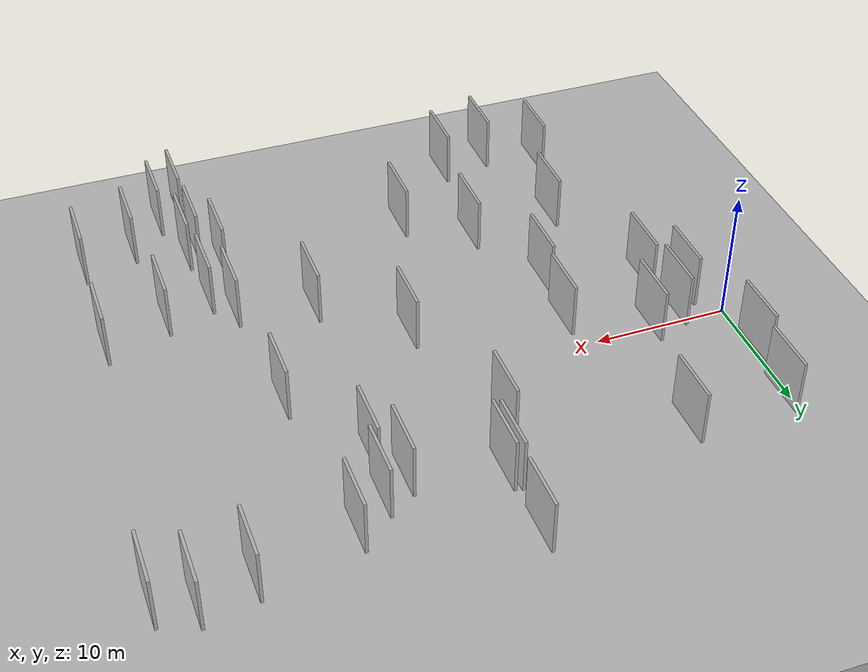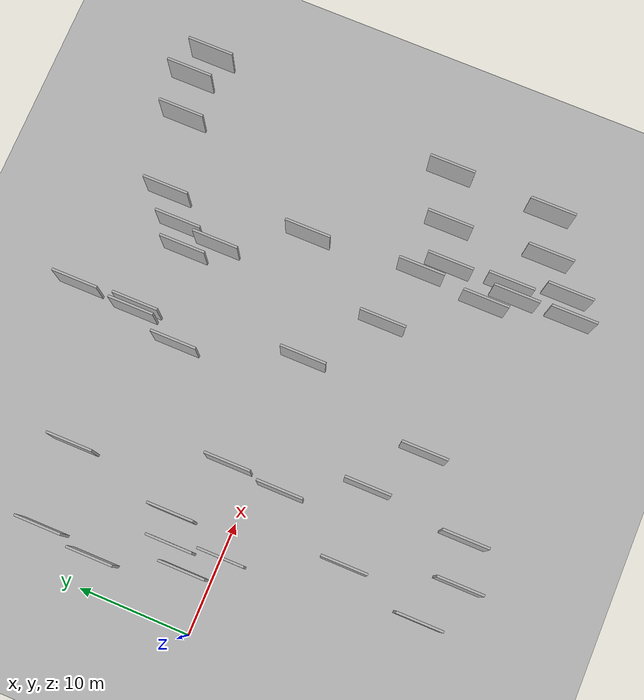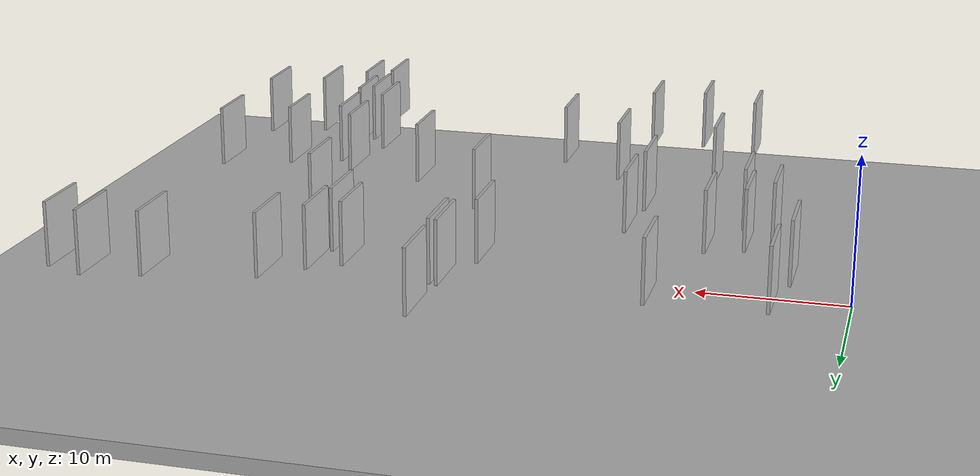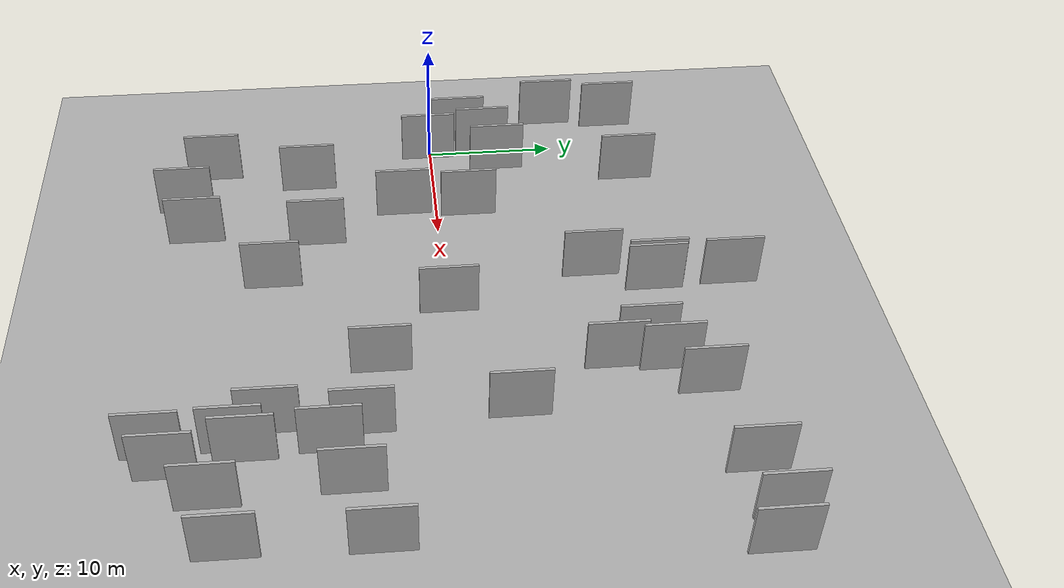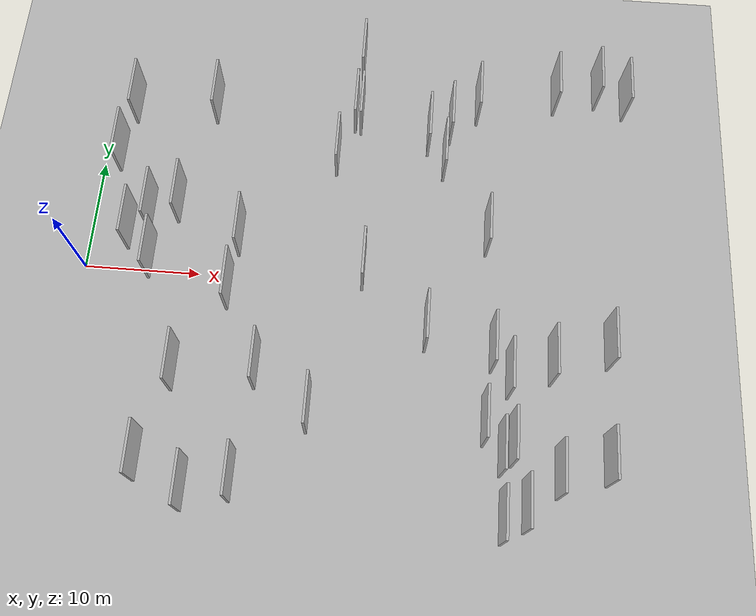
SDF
<?xml version="1.0" encoding="utf-8"?>

<sdf version="1.6">

   <world name="default">

      <gui fullscreen="0">

         <camera name="user_camera">

            <pose>-15 0 4.57585 0 0 0</pose>

            <view_controller>orbit</view_controller>

         </camera>

      </gui>

      <scene>

         <sky>

           <clouds>

             <speed>12</speed>

           </clouds>

         </sky>

         <ambient>0.4 0.4 0.4 1</ambient>

         <background>0.7 0.7 0.7 1</background>

         <shadows>1</shadows>

      </scene>

      <gravity>0 0 -9.8066</gravity>

      <magnetic_field>6e-06 2.3e-05 -4.2e-05</magnetic_field>

      <physics default="0" name="default_physics" type="ode">

         <ode>

            <solver>

               <type>quick</type>

               <iters>10</iters>

               <sor>1.0</sor>

               <use_dynamic_moi_rescaling>0</use_dynamic_moi_rescaling>

            </solver>

            <constraints>

               <cfm>0</cfm>

               <erp>0.2</erp>

               <contact_max_correcting_vel>100</contact_max_correcting_vel>

               <contact_surface_layer>0.001</contact_surface_layer>

            </constraints>

         </ode>

         <max_step_size>0.004</max_step_size>

         <real_time_factor>1</real_time_factor>

         <real_time_update_rate>250</real_time_update_rate>

      </physics>

      <light name="sun" type="directional">

         <cast_shadows>1</cast_shadows>

         <pose>0 0 10 0 0 0</pose>

         <diffuse>0.8 0.8 0.8 1</diffuse>

         <specular>0.2 0.2 0.2 1</specular>

         <attenuation>

            <range>1000</range>

            <constant>0.9</constant>

            <linear>0.01</linear>

            <quadratic>0.001</quadratic>

         </attenuation>

         <direction>-0.5 0.1 -0.9</direction>

      </light>

      <include>

         <name>ground_plane_1</name>

         <uri>model://HANNAS_ground_plane</uri>

         <pose>0 0 0  0 0 0</pose>

      </include>

      <include>

         <name>ground_plane_2</name>

         <uri>model://HANNAS_ground_plane</uri>

         <pose>100 0 0  0 0 0</pose>

      </include>

      <model name="HANNAS_wall_1">

         <static>1</static>

         <pose frame="">39.7737 17.2272 5.0 0.000000 0.000000 1.570796</pose>

         <link name="link">

            <pose frame="">0 0 2.00 0 0 0</pose>

            <collision name="collision">

               <geometry>

                  <box>

                     <size>4.00 0.2 4.00</size>

                  </box>

               </geometry>

               <max_contacts>10</max_contacts>

               <surface>

                  <contact>

                     <ode/>

                  </contact>

                  <bounce/>

                  <friction>

                     <torsional>

                        <ode/>

                     </torsional>

                     <ode/>

                  </friction>

               </surface>

            </collision>

            <visual name="visual">

               <cast_shadows>0</cast_shadows>

               <geometry>

                  <box>

                     <size>4.00 0.2 4.00</size>

                  </box>

               </geometry>

               <material>

                  <script>

                     <uri>model://HANNAS_wall/materials/scripts</uri>

                     <uri>model://HANNAS_wall/materials/textures</uri>

                     <name>vrc/HANNAS_wall</name>

                  </script>

               </material>

            </visual>

            <self_collide>0</self_collide>

            <enable_wind>0</enable_wind>

            <kinematic>0</kinematic>

         </link>

      </model>

      <model name="HANNAS_wall_2">

         <static>1</static>

         <pose frame="">36.5214 -13.6682 5.0 0.000000 0.000000 1.570796</pose>

         <link name="link">

            <pose frame="">0 0 2.00 0 0 0</pose>

            <collision name="collision">

               <geometry>

                  <box>

                     <size>4.00 0.2 4.00</size>

                  </box>

               </geometry>

               <max_contacts>10</max_contacts>

               <surface>

                  <contact>

                     <ode/>

                  </contact>

                  <bounce/>

                  <friction>

                     <torsional>

                        <ode/>

                     </torsional>

                     <ode/>

                  </friction>

               </surface>

            </collision>

            <visual name="visual">

               <cast_shadows>0</cast_shadows>

               <geometry>

                  <box>

                     <size>4.00 0.2 4.00</size>

                  </box>

               </geometry>

               <material>

                  <script>

                     <uri>model://HANNAS_wall/materials/scripts</uri>

                     <uri>model://HANNAS_wall/materials/textures</uri>

                     <name>vrc/HANNAS_wall</name>

                  </script>

               </material>

            </visual>

            <self_collide>0</self_collide>

            <enable_wind>0</enable_wind>

            <kinematic>0</kinematic>

         </link>

      </model>

      <model name="HANNAS_wall_3">

         <static>1</static>

         <pose frame="">34.3541 -12.2598 5.0 0.000000 0.000000 1.570796</pose>

         <link name="link">

            <pose frame="">0 0 2.00 0 0 0</pose>

            <collision name="collision">

               <geometry>

                  <box>

                     <size>4.00 0.2 4.00</size>

                  </box>

               </geometry>

               <max_contacts>10</max_contacts>

               <surface>

                  <contact>

                     <ode/>

                  </contact>

                  <bounce/>

                  <friction>

                     <torsional>

                        <ode/>

                     </torsional>

                     <ode/>

                  </friction>

               </surface>

            </collision>

            <visual name="visual">

               <cast_shadows>0</cast_shadows>

               <geometry>

                  <box>

                     <size>4.00 0.2 4.00</size>

                  </box>

               </geometry>

               <material>

                  <script>

                     <uri>model://HANNAS_wall/materials/scripts</uri>

                     <uri>model://HANNAS_wall/materials/textures</uri>

                     <name>vrc/HANNAS_wall</name>

                  </script>

               </material>

            </visual>

            <self_collide>0</self_collide>

            <enable_wind>0</enable_wind>

            <kinematic>0</kinematic>

         </link>

      </model>

      <model name="HANNAS_wall_4">

         <static>1</static>

         <pose frame="">22.7019 14.2163 5.0 0.000000 0.000000 1.570796</pose>

         <link name="link">

            <pose frame="">0 0 2.00 0 0 0</pose>

            <collision name="collision">

               <geometry>

                  <box>

                     <size>4.00 0.2 4.00</size>

                  </box>

               </geometry>

               <max_contacts>10</max_contacts>

               <surface>

                  <contact>

                     <ode/>

                  </contact>

                  <bounce/>

                  <friction>

                     <torsional>

                        <ode/>

                     </torsional>

                     <ode/>

                  </friction>

               </surface>

            </collision>

            <visual name="visual">

               <cast_shadows>0</cast_shadows>

               <geometry>

                  <box>

                     <size>4.00 0.2 4.00</size>

                  </box>

               </geometry>

               <material>

                  <script>

                     <uri>model://HANNAS_wall/materials/scripts</uri>

                     <uri>model://HANNAS_wall/materials/textures</uri>

                     <name>vrc/HANNAS_wall</name>

                  </script>

               </material>

            </visual>

            <self_collide>0</self_collide>

            <enable_wind>0</enable_wind>

            <kinematic>0</kinematic>

         </link>

      </model>

      <model name="HANNAS_wall_5">

         <static>1</static>

         <pose frame="">8.6656 4.5547 5.0 0.000000 0.000000 1.570796</pose>

         <link name="link">

            <pose frame="">0 0 2.00 0 0 0</pose>

            <collision name="collision">

               <geometry>

                  <box>

                     <size>4.00 0.2 4.00</size>

                  </box>

               </geometry>

               <max_contacts>10</max_contacts>

               <surface>

                  <contact>

                     <ode/>

                  </contact>

                  <bounce/>

                  <friction>

                     <torsional>

                        <ode/>

                     </torsional>

                     <ode/>

                  </friction>

               </surface>

            </collision>

            <visual name="visual">

               <cast_shadows>0</cast_shadows>

               <geometry>

                  <box>

                     <size>4.00 0.2 4.00</size>

                  </box>

               </geometry>

               <material>

                  <script>

                     <uri>model://HANNAS_wall/materials/scripts</uri>

                     <uri>model://HANNAS_wall/materials/textures</uri>

                     <name>vrc/HANNAS_wall</name>

                  </script>

               </material>

            </visual>

            <self_collide>0</self_collide>

            <enable_wind>0</enable_wind>

            <kinematic>0</kinematic>

         </link>

      </model>

      <model name="HANNAS_wall_6">

         <static>1</static>

         <pose frame="">30.4517 10.0811 5.0 0.000000 0.000000 1.570796</pose>

         <link name="link">

            <pose frame="">0 0 2.00 0 0 0</pose>

            <collision name="collision">

               <geometry>

                  <box>

                     <size>4.00 0.2 4.00</size>

                  </box>

               </geometry>

               <max_contacts>10</max_contacts>

               <surface>

                  <contact>

                     <ode/>

                  </contact>

                  <bounce/>

                  <friction>

                     <torsional>

                        <ode/>

                     </torsional>

                     <ode/>

                  </friction>

               </surface>

            </collision>

            <visual name="visual">

               <cast_shadows>0</cast_shadows>

               <geometry>

                  <box>

                     <size>4.00 0.2 4.00</size>

                  </box>

               </geometry>

               <material>

                  <script>

                     <uri>model://HANNAS_wall/materials/scripts</uri>

                     <uri>model://HANNAS_wall/materials/textures</uri>

                     <name>vrc/HANNAS_wall</name>

                  </script>

               </material>

            </visual>

            <self_collide>0</self_collide>

            <enable_wind>0</enable_wind>

            <kinematic>0</kinematic>

         </link>

      </model>

      <model name="HANNAS_wall_7">

         <static>1</static>

         <pose frame="">14.0369 1.9463 5.0 0.000000 0.000000 1.570796</pose>

         <link name="link">

            <pose frame="">0 0 2.00 0 0 0</pose>

            <collision name="collision">

               <geometry>

                  <box>

                     <size>4.00 0.2 4.00</size>

                  </box>

               </geometry>

               <max_contacts>10</max_contacts>

               <surface>

                  <contact>

                     <ode/>

                  </contact>

                  <bounce/>

                  <friction>

                     <torsional>

                        <ode/>

                     </torsional>

                     <ode/>

                  </friction>

               </surface>

            </collision>

            <visual name="visual">

               <cast_shadows>0</cast_shadows>

               <geometry>

                  <box>

                     <size>4.00 0.2 4.00</size>

                  </box>

               </geometry>

               <material>

                  <script>

                     <uri>model://HANNAS_wall/materials/scripts</uri>

                     <uri>model://HANNAS_wall/materials/textures</uri>

                     <name>vrc/HANNAS_wall</name>

                  </script>

               </material>

            </visual>

            <self_collide>0</self_collide>

            <enable_wind>0</enable_wind>

            <kinematic>0</kinematic>

         </link>

      </model>

      <model name="HANNAS_wall_8">

         <static>1</static>

         <pose frame="">43.3357 18.0027 5.0 0.000000 0.000000 1.570796</pose>

         <link name="link">

            <pose frame="">0 0 2.00 0 0 0</pose>

            <collision name="collision">

               <geometry>

                  <box>

                     <size>4.00 0.2 4.00</size>

                  </box>

               </geometry>

               <max_contacts>10</max_contacts>

               <surface>

                  <contact>

                     <ode/>

                  </contact>

                  <bounce/>

                  <friction>

                     <torsional>

                        <ode/>

                     </torsional>

                     <ode/>

                  </friction>

               </surface>

            </collision>

            <visual name="visual">

               <cast_shadows>0</cast_shadows>

               <geometry>

                  <box>

                     <size>4.00 0.2 4.00</size>

                  </box>

               </geometry>

               <material>

                  <script>

                     <uri>model://HANNAS_wall/materials/scripts</uri>

                     <uri>model://HANNAS_wall/materials/textures</uri>

                     <name>vrc/HANNAS_wall</name>

                  </script>

               </material>

            </visual>

            <self_collide>0</self_collide>

            <enable_wind>0</enable_wind>

            <kinematic>0</kinematic>

         </link>

      </model>

      <model name="HANNAS_wall_9">

         <static>1</static>

         <pose frame="">29.0372 12.4227 5.0 0.000000 0.000000 1.570796</pose>

         <link name="link">

            <pose frame="">0 0 2.00 0 0 0</pose>

            <collision name="collision">

               <geometry>

                  <box>

                     <size>4.00 0.2 4.00</size>

                  </box>

               </geometry>

               <max_contacts>10</max_contacts>

               <surface>

                  <contact>

                     <ode/>

                  </contact>

                  <bounce/>

                  <friction>

                     <torsional>

                        <ode/>

                     </torsional>

                     <ode/>

                  </friction>

               </surface>

            </collision>

            <visual name="visual">

               <cast_shadows>0</cast_shadows>

               <geometry>

                  <box>

                     <size>4.00 0.2 4.00</size>

                  </box>

               </geometry>

               <material>

                  <script>

                     <uri>model://HANNAS_wall/materials/scripts</uri>

                     <uri>model://HANNAS_wall/materials/textures</uri>

                     <name>vrc/HANNAS_wall</name>

                  </script>

               </material>

            </visual>

            <self_collide>0</self_collide>

            <enable_wind>0</enable_wind>

            <kinematic>0</kinematic>

         </link>

      </model>

      <model name="HANNAS_wall_10">

         <static>1</static>

         <pose frame="">16.5495 -9.1146 5.0 0.000000 0.000000 1.570796</pose>

         <link name="link">

            <pose frame="">0 0 2.00 0 0 0</pose>

            <collision name="collision">

               <geometry>

                  <box>

                     <size>4.00 0.2 4.00</size>

                  </box>

               </geometry>

               <max_contacts>10</max_contacts>

               <surface>

                  <contact>

                     <ode/>

                  </contact>

                  <bounce/>

                  <friction>

                     <torsional>

                        <ode/>

                     </torsional>

                     <ode/>

                  </friction>

               </surface>

            </collision>

            <visual name="visual">

               <cast_shadows>0</cast_shadows>

               <geometry>

                  <box>

                     <size>4.00 0.2 4.00</size>

                  </box>

               </geometry>

               <material>

                  <script>

                     <uri>model://HANNAS_wall/materials/scripts</uri>

                     <uri>model://HANNAS_wall/materials/textures</uri>

                     <name>vrc/HANNAS_wall</name>

                  </script>

               </material>

            </visual>

            <self_collide>0</self_collide>

            <enable_wind>0</enable_wind>

            <kinematic>0</kinematic>

         </link>

      </model>

      <model name="HANNAS_wall_11">

         <static>1</static>

         <pose frame="">21.4360 9.8905 5.0 0.000000 0.000000 1.570796</pose>

         <link name="link">

            <pose frame="">0 0 2.00 0 0 0</pose>

            <collision name="collision">

               <geometry>

                  <box>

                     <size>4.00 0.2 4.00</size>

                  </box>

               </geometry>

               <max_contacts>10</max_contacts>

               <surface>

                  <contact>

                     <ode/>

                  </contact>

                  <bounce/>

                  <friction>

                     <torsional>

                        <ode/>

                     </torsional>

                     <ode/>

                  </friction>

               </surface>

            </collision>

            <visual name="visual">

               <cast_shadows>0</cast_shadows>

               <geometry>

                  <box>

                     <size>4.00 0.2 4.00</size>

                  </box>

               </geometry>

               <material>

                  <script>

                     <uri>model://HANNAS_wall/materials/scripts</uri>

                     <uri>model://HANNAS_wall/materials/textures</uri>

                     <name>vrc/HANNAS_wall</name>

                  </script>

               </material>

            </visual>

            <self_collide>0</self_collide>

            <enable_wind>0</enable_wind>

            <kinematic>0</kinematic>

         </link>

      </model>

      <model name="HANNAS_wall_12">

         <static>1</static>

         <pose frame="">22.9943 19.3496 5.0 0.000000 0.000000 1.570796</pose>

         <link name="link">

            <pose frame="">0 0 2.00 0 0 0</pose>

            <collision name="collision">

               <geometry>

                  <box>

                     <size>4.00 0.2 4.00</size>

                  </box>

               </geometry>

               <max_contacts>10</max_contacts>

               <surface>

                  <contact>

                     <ode/>

                  </contact>

                  <bounce/>

                  <friction>

                     <torsional>

                        <ode/>

                     </torsional>

                     <ode/>

                  </friction>

               </surface>

            </collision>

            <visual name="visual">

               <cast_shadows>0</cast_shadows>

               <geometry>

                  <box>

                     <size>4.00 0.2 4.00</size>

                  </box>

               </geometry>

               <material>

                  <script>

                     <uri>model://HANNAS_wall/materials/scripts</uri>

                     <uri>model://HANNAS_wall/materials/textures</uri>

                     <name>vrc/HANNAS_wall</name>

                  </script>

               </material>

            </visual>

            <self_collide>0</self_collide>

            <enable_wind>0</enable_wind>

            <kinematic>0</kinematic>

         </link>

      </model>

      <model name="HANNAS_wall_13">

         <static>1</static>

         <pose frame="">39.4922 -7.1255 5.0 0.000000 0.000000 1.570796</pose>

         <link name="link">

            <pose frame="">0 0 2.00 0 0 0</pose>

            <collision name="collision">

               <geometry>

                  <box>

                     <size>4.00 0.2 4.00</size>

                  </box>

               </geometry>

               <max_contacts>10</max_contacts>

               <surface>

                  <contact>

                     <ode/>

                  </contact>

                  <bounce/>

                  <friction>

                     <torsional>

                        <ode/>

                     </torsional>

                     <ode/>

                  </friction>

               </surface>

            </collision>

            <visual name="visual">

               <cast_shadows>0</cast_shadows>

               <geometry>

                  <box>

                     <size>4.00 0.2 4.00</size>

                  </box>

               </geometry>

               <material>

                  <script>

                     <uri>model://HANNAS_wall/materials/scripts</uri>

                     <uri>model://HANNAS_wall/materials/textures</uri>

                     <name>vrc/HANNAS_wall</name>

                  </script>

               </material>

            </visual>

            <self_collide>0</self_collide>

            <enable_wind>0</enable_wind>

            <kinematic>0</kinematic>

         </link>

      </model>

      <model name="HANNAS_wall_14">

         <static>1</static>

         <pose frame="">10.6797 14.2090 5.0 0.000000 0.000000 1.570796</pose>

         <link name="link">

            <pose frame="">0 0 2.00 0 0 0</pose>

            <collision name="collision">

               <geometry>

                  <box>

                     <size>4.00 0.2 4.00</size>

                  </box>

               </geometry>

               <max_contacts>10</max_contacts>

               <surface>

                  <contact>

                     <ode/>

                  </contact>

                  <bounce/>

                  <friction>

                     <torsional>

                        <ode/>

                     </torsional>

                     <ode/>

                  </friction>

               </surface>

            </collision>

            <visual name="visual">

               <cast_shadows>0</cast_shadows>

               <geometry>

                  <box>

                     <size>4.00 0.2 4.00</size>

                  </box>

               </geometry>

               <material>

                  <script>

                     <uri>model://HANNAS_wall/materials/scripts</uri>

                     <uri>model://HANNAS_wall/materials/textures</uri>

                     <name>vrc/HANNAS_wall</name>

                  </script>

               </material>

            </visual>

            <self_collide>0</self_collide>

            <enable_wind>0</enable_wind>

            <kinematic>0</kinematic>

         </link>

      </model>

      <model name="HANNAS_wall_15">

         <static>1</static>

         <pose frame="">39.9964 -15.7998 5.0 0.000000 0.000000 1.570796</pose>

         <link name="link">

            <pose frame="">0 0 2.00 0 0 0</pose>

            <collision name="collision">

               <geometry>

                  <box>

                     <size>4.00 0.2 4.00</size>

                  </box>

               </geometry>

               <max_contacts>10</max_contacts>

               <surface>

                  <contact>

                     <ode/>

                  </contact>

                  <bounce/>

                  <friction>

                     <torsional>

                        <ode/>

                     </torsional>

                     <ode/>

                  </friction>

               </surface>

            </collision>

            <visual name="visual">

               <cast_shadows>0</cast_shadows>

               <geometry>

                  <box>

                     <size>4.00 0.2 4.00</size>

                  </box>

               </geometry>

               <material>

                  <script>

                     <uri>model://HANNAS_wall/materials/scripts</uri>

                     <uri>model://HANNAS_wall/materials/textures</uri>

                     <name>vrc/HANNAS_wall</name>

                  </script>

               </material>

            </visual>

            <self_collide>0</self_collide>

            <enable_wind>0</enable_wind>

            <kinematic>0</kinematic>

         </link>

      </model>

      <model name="HANNAS_wall_16">

         <static>1</static>

         <pose frame="">35.7026 -14.4355 5.0 0.000000 0.000000 1.570796</pose>

         <link name="link">

            <pose frame="">0 0 2.00 0 0 0</pose>

            <collision name="collision">

               <geometry>

                  <box>

                     <size>4.00 0.2 4.00</size>

                  </box>

               </geometry>

               <max_contacts>10</max_contacts>

               <surface>

                  <contact>

                     <ode/>

                  </contact>

                  <bounce/>

                  <friction>

                     <torsional>

                        <ode/>

                     </torsional>

                     <ode/>

                  </friction>

               </surface>

            </collision>

            <visual name="visual">

               <cast_shadows>0</cast_shadows>

               <geometry>

                  <box>

                     <size>4.00 0.2 4.00</size>

                  </box>

               </geometry>

               <material>

                  <script>

                     <uri>model://HANNAS_wall/materials/scripts</uri>

                     <uri>model://HANNAS_wall/materials/textures</uri>

                     <name>vrc/HANNAS_wall</name>

                  </script>

               </material>

            </visual>

            <self_collide>0</self_collide>

            <enable_wind>0</enable_wind>

            <kinematic>0</kinematic>

         </link>

      </model>

      <model name="HANNAS_wall_17">

         <static>1</static>

         <pose frame="">12.1070 -18.7180 5.0 0.000000 0.000000 1.570796</pose>

         <link name="link">

            <pose frame="">0 0 2.00 0 0 0</pose>

            <collision name="collision">

               <geometry>

                  <box>

                     <size>4.00 0.2 4.00</size>

                  </box>

               </geometry>

               <max_contacts>10</max_contacts>

               <surface>

                  <contact>

                     <ode/>

                  </contact>

                  <bounce/>

                  <friction>

                     <torsional>

                        <ode/>

                     </torsional>

                     <ode/>

                  </friction>

               </surface>

            </collision>

            <visual name="visual">

               <cast_shadows>0</cast_shadows>

               <geometry>

                  <box>

                     <size>4.00 0.2 4.00</size>

                  </box>

               </geometry>

               <material>

                  <script>

                     <uri>model://HANNAS_wall/materials/scripts</uri>

                     <uri>model://HANNAS_wall/materials/textures</uri>

                     <name>vrc/HANNAS_wall</name>

                  </script>

               </material>

            </visual>

            <self_collide>0</self_collide>

            <enable_wind>0</enable_wind>

            <kinematic>0</kinematic>

         </link>

      </model>

      <model name="HANNAS_wall_18">

         <static>1</static>

         <pose frame="">37.5478 -18.4277 5.0 0.000000 0.000000 1.570796</pose>

         <link name="link">

            <pose frame="">0 0 2.00 0 0 0</pose>

            <collision name="collision">

               <geometry>

                  <box>

                     <size>4.00 0.2 4.00</size>

                  </box>

               </geometry>

               <max_contacts>10</max_contacts>

               <surface>

                  <contact>

                     <ode/>

                  </contact>

                  <bounce/>

                  <friction>

                     <torsional>

                        <ode/>

                     </torsional>

                     <ode/>

                  </friction>

               </surface>

            </collision>

            <visual name="visual">

               <cast_shadows>0</cast_shadows>

               <geometry>

                  <box>

                     <size>4.00 0.2 4.00</size>

                  </box>

               </geometry>

               <material>

                  <script>

                     <uri>model://HANNAS_wall/materials/scripts</uri>

                     <uri>model://HANNAS_wall/materials/textures</uri>

                     <name>vrc/HANNAS_wall</name>

                  </script>

               </material>

            </visual>

            <self_collide>0</self_collide>

            <enable_wind>0</enable_wind>

            <kinematic>0</kinematic>

         </link>

      </model>

      <model name="HANNAS_wall_19">

         <static>1</static>

         <pose frame="">34.8630 -6.4273 5.0 0.000000 0.000000 1.570796</pose>

         <link name="link">

            <pose frame="">0 0 2.00 0 0 0</pose>

            <collision name="collision">

               <geometry>

                  <box>

                     <size>4.00 0.2 4.00</size>

                  </box>

               </geometry>

               <max_contacts>10</max_contacts>

               <surface>

                  <contact>

                     <ode/>

                  </contact>

                  <bounce/>

                  <friction>

                     <torsional>

                        <ode/>

                     </torsional>

                     <ode/>

                  </friction>

               </surface>

            </collision>

            <visual name="visual">

               <cast_shadows>0</cast_shadows>

               <geometry>

                  <box>

                     <size>4.00 0.2 4.00</size>

                  </box>

               </geometry>

               <material>

                  <script>

                     <uri>model://HANNAS_wall/materials/scripts</uri>

                     <uri>model://HANNAS_wall/materials/textures</uri>

                     <name>vrc/HANNAS_wall</name>

                  </script>

               </material>

            </visual>

            <self_collide>0</self_collide>

            <enable_wind>0</enable_wind>

            <kinematic>0</kinematic>

         </link>

      </model>

      <model name="HANNAS_wall_20">

         <static>1</static>

         <pose frame="">20.8919 -12.2482 5.0 0.000000 0.000000 1.570796</pose>

         <link name="link">

            <pose frame="">0 0 2.00 0 0 0</pose>

            <collision name="collision">

               <geometry>

                  <box>

                     <size>4.00 0.2 4.00</size>

                  </box>

               </geometry>

               <max_contacts>10</max_contacts>

               <surface>

                  <contact>

                     <ode/>

                  </contact>

                  <bounce/>

                  <friction>

                     <torsional>

                        <ode/>

                     </torsional>

                     <ode/>

                  </friction>

               </surface>

            </collision>

            <visual name="visual">

               <cast_shadows>0</cast_shadows>

               <geometry>

                  <box>

                     <size>4.00 0.2 4.00</size>

                  </box>

               </geometry>

               <material>

                  <script>

                     <uri>model://HANNAS_wall/materials/scripts</uri>

                     <uri>model://HANNAS_wall/materials/textures</uri>

                     <name>vrc/HANNAS_wall</name>

                  </script>

               </material>

            </visual>

            <self_collide>0</self_collide>

            <enable_wind>0</enable_wind>

            <kinematic>0</kinematic>

         </link>

      </model>

      <model name="HANNAS_wall_21">

         <static>1</static>

         <pose frame="">43.7235 -14.5778 5.0 0.000000 0.000000 1.570796</pose>

         <link name="link">

            <pose frame="">0 0 2.00 0 0 0</pose>

            <collision name="collision">

               <geometry>

                  <box>

                     <size>4.00 0.2 4.00</size>

                  </box>

               </geometry>

               <max_contacts>10</max_contacts>

               <surface>

                  <contact>

                     <ode/>

                  </contact>

                  <bounce/>

                  <friction>

                     <torsional>

                        <ode/>

                     </torsional>

                     <ode/>

                  </friction>

               </surface>

            </collision>

            <visual name="visual">

               <cast_shadows>0</cast_shadows>

               <geometry>

                  <box>

                     <size>4.00 0.2 4.00</size>

                  </box>

               </geometry>

               <material>

                  <script>

                     <uri>model://HANNAS_wall/materials/scripts</uri>

                     <uri>model://HANNAS_wall/materials/textures</uri>

                     <name>vrc/HANNAS_wall</name>

                  </script>

               </material>

            </visual>

            <self_collide>0</self_collide>

            <enable_wind>0</enable_wind>

            <kinematic>0</kinematic>

         </link>

      </model>

      <model name="HANNAS_wall_22">

         <static>1</static>

         <pose frame="">23.1831 14.0535 5.0 0.000000 0.000000 1.570796</pose>

         <link name="link">

            <pose frame="">0 0 2.00 0 0 0</pose>

            <collision name="collision">

               <geometry>

                  <box>

                     <size>4.00 0.2 4.00</size>

                  </box>

               </geometry>

               <max_contacts>10</max_contacts>

               <surface>

                  <contact>

                     <ode/>

                  </contact>

                  <bounce/>

                  <friction>

                     <torsional>

                        <ode/>

                     </torsional>

                     <ode/>

                  </friction>

               </surface>

            </collision>

            <visual name="visual">

               <cast_shadows>0</cast_shadows>

               <geometry>

                  <box>

                     <size>4.00 0.2 4.00</size>

                  </box>

               </geometry>

               <material>

                  <script>

                     <uri>model://HANNAS_wall/materials/scripts</uri>

                     <uri>model://HANNAS_wall/materials/textures</uri>

                     <name>vrc/HANNAS_wall</name>

                  </script>

               </material>

            </visual>

            <self_collide>0</self_collide>

            <enable_wind>0</enable_wind>

            <kinematic>0</kinematic>

         </link>

      </model>

      <model name="HANNAS_wall_23">

         <static>1</static>

         <pose frame="">13.6134 -2.7442 5.0 0.000000 0.000000 1.570796</pose>

         <link name="link">

            <pose frame="">0 0 2.00 0 0 0</pose>

            <collision name="collision">

               <geometry>

                  <box>

                     <size>4.00 0.2 4.00</size>

                  </box>

               </geometry>

               <max_contacts>10</max_contacts>

               <surface>

                  <contact>

                     <ode/>

                  </contact>

                  <bounce/>

                  <friction>

                     <torsional>

                        <ode/>

                     </torsional>

                     <ode/>

                  </friction>

               </surface>

            </collision>

            <visual name="visual">

               <cast_shadows>0</cast_shadows>

               <geometry>

                  <box>

                     <size>4.00 0.2 4.00</size>

                  </box>

               </geometry>

               <material>

                  <script>

                     <uri>model://HANNAS_wall/materials/scripts</uri>

                     <uri>model://HANNAS_wall/materials/textures</uri>

                     <name>vrc/HANNAS_wall</name>

                  </script>

               </material>

            </visual>

            <self_collide>0</self_collide>

            <enable_wind>0</enable_wind>

            <kinematic>0</kinematic>

         </link>

      </model>

      <model name="HANNAS_wall_24">

         <static>1</static>

         <pose frame="">45.7509 17.1060 5.0 0.000000 0.000000 1.570796</pose>

         <link name="link">

            <pose frame="">0 0 2.00 0 0 0</pose>

            <collision name="collision">

               <geometry>

                  <box>

                     <size>4.00 0.2 4.00</size>

                  </box>

               </geometry>

               <max_contacts>10</max_contacts>

               <surface>

                  <contact>

                     <ode/>

                  </contact>

                  <bounce/>

                  <friction>

                     <torsional>

                        <ode/>

                     </torsional>

                     <ode/>

                  </friction>

               </surface>

            </collision>

            <visual name="visual">

               <cast_shadows>0</cast_shadows>

               <geometry>

                  <box>

                     <size>4.00 0.2 4.00</size>

                  </box>

               </geometry>

               <material>

                  <script>

                     <uri>model://HANNAS_wall/materials/scripts</uri>

                     <uri>model://HANNAS_wall/materials/textures</uri>

                     <name>vrc/HANNAS_wall</name>

                  </script>

               </material>

            </visual>

            <self_collide>0</self_collide>

            <enable_wind>0</enable_wind>

            <kinematic>0</kinematic>

         </link>

      </model>

      <model name="HANNAS_wall_25">

         <static>1</static>

         <pose frame="">4.8499 1.9086 5.0 0.000000 0.000000 1.570796</pose>

         <link name="link">

            <pose frame="">0 0 2.00 0 0 0</pose>

            <collision name="collision">

               <geometry>

                  <box>

                     <size>4.00 0.2 4.00</size>

                  </box>

               </geometry>

               <max_contacts>10</max_contacts>

               <surface>

                  <contact>

                     <ode/>

                  </contact>

                  <bounce/>

                  <friction>

                     <torsional>

                        <ode/>

                     </torsional>

                     <ode/>

                  </friction>

               </surface>

            </collision>

            <visual name="visual">

               <cast_shadows>0</cast_shadows>

               <geometry>

                  <box>

                     <size>4.00 0.2 4.00</size>

                  </box>

               </geometry>

               <material>

                  <script>

                     <uri>model://HANNAS_wall/materials/scripts</uri>

                     <uri>model://HANNAS_wall/materials/textures</uri>

                     <name>vrc/HANNAS_wall</name>

                  </script>

               </material>

            </visual>

            <self_collide>0</self_collide>

            <enable_wind>0</enable_wind>

            <kinematic>0</kinematic>

         </link>

      </model>

      <model name="HANNAS_wall_26">

         <static>1</static>

         <pose frame="">3.0642 8.9905 5.0 0.000000 0.000000 1.570796</pose>

         <link name="link">

            <pose frame="">0 0 2.00 0 0 0</pose>

            <collision name="collision">

               <geometry>

                  <box>

                     <size>4.00 0.2 4.00</size>

                  </box>

               </geometry>

               <max_contacts>10</max_contacts>

               <surface>

                  <contact>

                     <ode/>

                  </contact>

                  <bounce/>

                  <friction>

                     <torsional>

                        <ode/>

                     </torsional>

                     <ode/>

                  </friction>

               </surface>

            </collision>

            <visual name="visual">

               <cast_shadows>0</cast_shadows>

               <geometry>

                  <box>

                     <size>4.00 0.2 4.00</size>

                  </box>

               </geometry>

               <material>

                  <script>

                     <uri>model://HANNAS_wall/materials/scripts</uri>

                     <uri>model://HANNAS_wall/materials/textures</uri>

                     <name>vrc/HANNAS_wall</name>

                  </script>

               </material>

            </visual>

            <self_collide>0</self_collide>

            <enable_wind>0</enable_wind>

            <kinematic>0</kinematic>

         </link>

      </model>

      <model name="HANNAS_wall_27">

         <static>1</static>

         <pose frame="">29.6071 -5.1067 5.0 0.000000 0.000000 1.570796</pose>

         <link name="link">

            <pose frame="">0 0 2.00 0 0 0</pose>

            <collision name="collision">

               <geometry>

                  <box>

                     <size>4.00 0.2 4.00</size>

                  </box>

               </geometry>

               <max_contacts>10</max_contacts>

               <surface>

                  <contact>

                     <ode/>

                  </contact>

                  <bounce/>

                  <friction>

                     <torsional>

                        <ode/>

                     </torsional>

                     <ode/>

                  </friction>

               </surface>

            </collision>

            <visual name="visual">

               <cast_shadows>0</cast_shadows>

               <geometry>

                  <box>

                     <size>4.00 0.2 4.00</size>

                  </box>

               </geometry>

               <material>

                  <script>

                     <uri>model://HANNAS_wall/materials/scripts</uri>

                     <uri>model://HANNAS_wall/materials/textures</uri>

                     <name>vrc/HANNAS_wall</name>

                  </script>

               </material>

            </visual>

            <self_collide>0</self_collide>

            <enable_wind>0</enable_wind>

            <kinematic>0</kinematic>

         </link>

      </model>

      <model name="HANNAS_wall_28">

         <static>1</static>

         <pose frame="">15.6488 -17.7944 5.0 0.000000 0.000000 1.570796</pose>

         <link name="link">

            <pose frame="">0 0 2.00 0 0 0</pose>

            <collision name="collision">

               <geometry>

                  <box>

                     <size>4.00 0.2 4.00</size>

                  </box>

               </geometry>

               <max_contacts>10</max_contacts>

               <surface>

                  <contact>

                     <ode/>

                  </contact>

                  <bounce/>

                  <friction>

                     <torsional>

                        <ode/>

                     </torsional>

                     <ode/>

                  </friction>

               </surface>

            </collision>

            <visual name="visual">

               <cast_shadows>0</cast_shadows>

               <geometry>

                  <box>

                     <size>4.00 0.2 4.00</size>

                  </box>

               </geometry>

               <material>

                  <script>

                     <uri>model://HANNAS_wall/materials/scripts</uri>

                     <uri>model://HANNAS_wall/materials/textures</uri>

                     <name>vrc/HANNAS_wall</name>

                  </script>

               </material>

            </visual>

            <self_collide>0</self_collide>

            <enable_wind>0</enable_wind>

            <kinematic>0</kinematic>

         </link>

      </model>

      <model name="HANNAS_wall_29">

         <static>1</static>

         <pose frame="">33.1297 15.7187 5.0 0.000000 0.000000 1.570796</pose>

         <link name="link">

            <pose frame="">0 0 2.00 0 0 0</pose>

            <collision name="collision">

               <geometry>

                  <box>

                     <size>4.00 0.2 4.00</size>

                  </box>

               </geometry>

               <max_contacts>10</max_contacts>

               <surface>

                  <contact>

                     <ode/>

                  </contact>

                  <bounce/>

                  <friction>

                     <torsional>

                        <ode/>

                     </torsional>

                     <ode/>

                  </friction>

               </surface>

            </collision>

            <visual name="visual">

               <cast_shadows>0</cast_shadows>

               <geometry>

                  <box>

                     <size>4.00 0.2 4.00</size>

                  </box>

               </geometry>

               <material>

                  <script>

                     <uri>model://HANNAS_wall/materials/scripts</uri>

                     <uri>model://HANNAS_wall/materials/textures</uri>

                     <name>vrc/HANNAS_wall</name>

                  </script>

               </material>

            </visual>

            <self_collide>0</self_collide>

            <enable_wind>0</enable_wind>

            <kinematic>0</kinematic>

         </link>

      </model>

      <model name="HANNAS_wall_30">

         <static>1</static>

         <pose frame="">34.2191 3.4209 5.0 0.000000 0.000000 1.570796</pose>

         <link name="link">

            <pose frame="">0 0 2.00 0 0 0</pose>

            <collision name="collision">

               <geometry>

                  <box>

                     <size>4.00 0.2 4.00</size>

                  </box>

               </geometry>

               <max_contacts>10</max_contacts>

               <surface>

                  <contact>

                     <ode/>

                  </contact>

                  <bounce/>

                  <friction>

                     <torsional>

                        <ode/>

                     </torsional>

                     <ode/>

                  </friction>

               </surface>

            </collision>

            <visual name="visual">

               <cast_shadows>0</cast_shadows>

               <geometry>

                  <box>

                     <size>4.00 0.2 4.00</size>

                  </box>

               </geometry>

               <material>

                  <script>

                     <uri>model://HANNAS_wall/materials/scripts</uri>

                     <uri>model://HANNAS_wall/materials/textures</uri>

                     <name>vrc/HANNAS_wall</name>

                  </script>

               </material>

            </visual>

            <self_collide>0</self_collide>

            <enable_wind>0</enable_wind>

            <kinematic>0</kinematic>

         </link>

      </model>

      <model name="HANNAS_wall_31">

         <static>1</static>

         <pose frame="">43.9449 -5.5701 5.0 0.000000 0.000000 1.570796</pose>

         <link name="link">

            <pose frame="">0 0 2.00 0 0 0</pose>

            <collision name="collision">

               <geometry>

                  <box>

                     <size>4.00 0.2 4.00</size>

                  </box>

               </geometry>

               <max_contacts>10</max_contacts>

               <surface>

                  <contact>

                     <ode/>

                  </contact>

                  <bounce/>

                  <friction>

                     <torsional>

                        <ode/>

                     </torsional>

                     <ode/>

                  </friction>

               </surface>

            </collision>

            <visual name="visual">

               <cast_shadows>0</cast_shadows>

               <geometry>

                  <box>

                     <size>4.00 0.2 4.00</size>

                  </box>

               </geometry>

               <material>

                  <script>

                     <uri>model://HANNAS_wall/materials/scripts</uri>

                     <uri>model://HANNAS_wall/materials/textures</uri>

                     <name>vrc/HANNAS_wall</name>

                  </script>

               </material>

            </visual>

            <self_collide>0</self_collide>

            <enable_wind>0</enable_wind>

            <kinematic>0</kinematic>

         </link>

      </model>

      <model name="HANNAS_wall_32">

         <static>1</static>

         <pose frame="">6.9239 -0.5233 5.0 0.000000 0.000000 1.570796</pose>

         <link name="link">

            <pose frame="">0 0 2.00 0 0 0</pose>

            <collision name="collision">

               <geometry>

                  <box>

                     <size>4.00 0.2 4.00</size>

                  </box>

               </geometry>

               <max_contacts>10</max_contacts>

               <surface>

                  <contact>

                     <ode/>

                  </contact>

                  <bounce/>

                  <friction>

                     <torsional>

                        <ode/>

                     </torsional>

                     <ode/>

                  </friction>

               </surface>

            </collision>

            <visual name="visual">

               <cast_shadows>0</cast_shadows>

               <geometry>

                  <box>

                     <size>4.00 0.2 4.00</size>

                  </box>

               </geometry>

               <material>

                  <script>

                     <uri>model://HANNAS_wall/materials/scripts</uri>

                     <uri>model://HANNAS_wall/materials/textures</uri>

                     <name>vrc/HANNAS_wall</name>

                  </script>

               </material>

            </visual>

            <self_collide>0</self_collide>

            <enable_wind>0</enable_wind>

            <kinematic>0</kinematic>

         </link>

      </model>

      <model name="HANNAS_wall_33">

         <static>1</static>

         <pose frame="">10.1201 -9.7070 5.0 0.000000 0.000000 1.570796</pose>

         <link name="link">

            <pose frame="">0 0 2.00 0 0 0</pose>

            <collision name="collision">

               <geometry>

                  <box>

                     <size>4.00 0.2 4.00</size>

                  </box>

               </geometry>

               <max_contacts>10</max_contacts>

               <surface>

                  <contact>

                     <ode/>

                  </contact>

                  <bounce/>

                  <friction>

                     <torsional>

                        <ode/>

                     </torsional>

                     <ode/>

                  </friction>

               </surface>

            </collision>

            <visual name="visual">

               <cast_shadows>0</cast_shadows>

               <geometry>

                  <box>

                     <size>4.00 0.2 4.00</size>

                  </box>

               </geometry>

               <material>

                  <script>

                     <uri>model://HANNAS_wall/materials/scripts</uri>

                     <uri>model://HANNAS_wall/materials/textures</uri>

                     <name>vrc/HANNAS_wall</name>

                  </script>

               </material>

            </visual>

            <self_collide>0</self_collide>

            <enable_wind>0</enable_wind>

            <kinematic>0</kinematic>

         </link>

      </model>

      <model name="HANNAS_wall_34">

         <static>1</static>

         <pose frame="">35.8432 -19.3730 5.0 0.000000 0.000000 1.570796</pose>

         <link name="link">

            <pose frame="">0 0 2.00 0 0 0</pose>

            <collision name="collision">

               <geometry>

                  <box>

                     <size>4.00 0.2 4.00</size>

                  </box>

               </geometry>

               <max_contacts>10</max_contacts>

               <surface>

                  <contact>

                     <ode/>

                  </contact>

                  <bounce/>

                  <friction>

                     <torsional>

                        <ode/>

                     </torsional>

                     <ode/>

                  </friction>

               </surface>

            </collision>

            <visual name="visual">

               <cast_shadows>0</cast_shadows>

               <geometry>

                  <box>

                     <size>4.00 0.2 4.00</size>

                  </box>

               </geometry>

               <material>

                  <script>

                     <uri>model://HANNAS_wall/materials/scripts</uri>

                     <uri>model://HANNAS_wall/materials/textures</uri>

                     <name>vrc/HANNAS_wall</name>

                  </script>

               </material>

            </visual>

            <self_collide>0</self_collide>

            <enable_wind>0</enable_wind>

            <kinematic>0</kinematic>

         </link>

      </model>

      <model name="HANNAS_wall_35">

         <static>1</static>

         <pose frame="">8.3212 -16.7823 5.0 0.000000 0.000000 1.570796</pose>

         <link name="link">

            <pose frame="">0 0 2.00 0 0 0</pose>

            <collision name="collision">

               <geometry>

                  <box>

                     <size>4.00 0.2 4.00</size>

                  </box>

               </geometry>

               <max_contacts>10</max_contacts>

               <surface>

                  <contact>

                     <ode/>

                  </contact>

                  <bounce/>

                  <friction>

                     <torsional>

                        <ode/>

                     </torsional>

                     <ode/>

                  </friction>

               </surface>

            </collision>

            <visual name="visual">

               <cast_shadows>0</cast_shadows>

               <geometry>

                  <box>

                     <size>4.00 0.2 4.00</size>

                  </box>

               </geometry>

               <material>

                  <script>

                     <uri>model://HANNAS_wall/materials/scripts</uri>

                     <uri>model://HANNAS_wall/materials/textures</uri>

                     <name>vrc/HANNAS_wall</name>

                  </script>

               </material>

            </visual>

            <self_collide>0</self_collide>

            <enable_wind>0</enable_wind>

            <kinematic>0</kinematic>

         </link>

      </model>

      <model name="HANNAS_wall_36">

         <static>1</static>

         <pose frame="">6.3572 3.6498 5.0 0.000000 0.000000 1.570796</pose>

         <link name="link">

            <pose frame="">0 0 2.00 0 0 0</pose>

            <collision name="collision">

               <geometry>

                  <box>

                     <size>4.00 0.2 4.00</size>

                  </box>

               </geometry>

               <max_contacts>10</max_contacts>

               <surface>

                  <contact>

                     <ode/>

                  </contact>

                  <bounce/>

                  <friction>

                     <torsional>

                        <ode/>

                     </torsional>

                     <ode/>

                  </friction>

               </surface>

            </collision>

            <visual name="visual">

               <cast_shadows>0</cast_shadows>

               <geometry>

                  <box>

                     <size>4.00 0.2 4.00</size>

                  </box>

               </geometry>

               <material>

                  <script>

                     <uri>model://HANNAS_wall/materials/scripts</uri>

                     <uri>model://HANNAS_wall/materials/textures</uri>

                     <name>vrc/HANNAS_wall</name>

                  </script>

               </material>

            </visual>

            <self_collide>0</self_collide>

            <enable_wind>0</enable_wind>

            <kinematic>0</kinematic>

         </link>

      </model>

      <model name="HANNAS_wall_37">

         <static>1</static>

         <pose frame="">24.3335 -0.2824 5.0 0.000000 0.000000 1.570796</pose>

         <link name="link">

            <pose frame="">0 0 2.00 0 0 0</pose>

            <collision name="collision">

               <geometry>

                  <box>

                     <size>4.00 0.2 4.00</size>

                  </box>

               </geometry>

               <max_contacts>10</max_contacts>

               <surface>

                  <contact>

                     <ode/>

                  </contact>

                  <bounce/>

                  <friction>

                     <torsional>

                        <ode/>

                     </torsional>

                     <ode/>

                  </friction>

               </surface>

            </collision>

            <visual name="visual">

               <cast_shadows>0</cast_shadows>

               <geometry>

                  <box>

                     <size>4.00 0.2 4.00</size>

                  </box>

               </geometry>

               <material>

                  <script>

                     <uri>model://HANNAS_wall/materials/scripts</uri>

                     <uri>model://HANNAS_wall/materials/textures</uri>

                     <name>vrc/HANNAS_wall</name>

                  </script>

               </material>

            </visual>

            <self_collide>0</self_collide>

            <enable_wind>0</enable_wind>

            <kinematic>0</kinematic>

         </link>

      </model>

      <model name="HANNAS_wall_38">

         <static>1</static>

         <pose frame="">30.8726 13.6297 5.0 0.000000 0.000000 1.570796</pose>

         <link name="link">

            <pose frame="">0 0 2.00 0 0 0</pose>

            <collision name="collision">

               <geometry>

                  <box>

                     <size>4.00 0.2 4.00</size>

                  </box>

               </geometry>

               <max_contacts>10</max_contacts>

               <surface>

                  <contact>

                     <ode/>

                  </contact>

                  <bounce/>

                  <friction>

                     <torsional>

                        <ode/>

                     </torsional>

                     <ode/>

                  </friction>

               </surface>

            </collision>

            <visual name="visual">

               <cast_shadows>0</cast_shadows>

               <geometry>

                  <box>

                     <size>4.00 0.2 4.00</size>

                  </box>

               </geometry>

               <material>

                  <script>

                     <uri>model://HANNAS_wall/materials/scripts</uri>

                     <uri>model://HANNAS_wall/materials/textures</uri>

                     <name>vrc/HANNAS_wall</name>

                  </script>

               </material>

            </visual>

            <self_collide>0</self_collide>

            <enable_wind>0</enable_wind>

            <kinematic>0</kinematic>

         </link>

      </model>

      <model name="HANNAS_wall_39">

         <static>1</static>

         <pose frame="">3.7374 13.7624 5.0 0.000000 0.000000 1.570796</pose>

         <link name="link">

            <pose frame="">0 0 2.00 0 0 0</pose>

            <collision name="collision">

               <geometry>

                  <box>

                     <size>4.00 0.2 4.00</size>

                  </box>

               </geometry>

               <max_contacts>10</max_contacts>

               <surface>

                  <contact>

                     <ode/>

                  </contact>

                  <bounce/>

                  <friction>

                     <torsional>

                        <ode/>

                     </torsional>

                     <ode/>

                  </friction>

               </surface>

            </collision>

            <visual name="visual">

               <cast_shadows>0</cast_shadows>

               <geometry>

                  <box>

                     <size>4.00 0.2 4.00</size>

                  </box>

               </geometry>

               <material>

                  <script>

                     <uri>model://HANNAS_wall/materials/scripts</uri>

                     <uri>model://HANNAS_wall/materials/textures</uri>

                     <name>vrc/HANNAS_wall</name>

                  </script>

               </material>

            </visual>

            <self_collide>0</self_collide>

            <enable_wind>0</enable_wind>

            <kinematic>0</kinematic>

         </link>

      </model>

      <model name="HANNAS_wall_40">

         <static>1</static>

         <pose frame="">36.1915 -8.4357 5.0 0.000000 0.000000 1.570796</pose>

         <link name="link">

            <pose frame="">0 0 2.00 0 0 0</pose>

            <collision name="collision">

               <geometry>

                  <box>

                     <size>4.00 0.2 4.00</size>

                  </box>

               </geometry>

               <max_contacts>10</max_contacts>

               <surface>

                  <contact>

                     <ode/>

                  </contact>

                  <bounce/>

                  <friction>

                     <torsional>

                        <ode/>

                     </torsional>

                     <ode/>

                  </friction>

               </surface>

            </collision>

            <visual name="visual">

               <cast_shadows>0</cast_shadows>

               <geometry>

                  <box>

                     <size>4.00 0.2 4.00</size>

                  </box>

               </geometry>

               <material>

                  <script>

                     <uri>model://HANNAS_wall/materials/scripts</uri>

                     <uri>model://HANNAS_wall/materials/textures</uri>

                     <name>vrc/HANNAS_wall</name>

                  </script>

               </material>

            </visual>

            <self_collide>0</self_collide>

            <enable_wind>0</enable_wind>

            <kinematic>0</kinematic>

         </link>

      </model>

   </world>

</sdf>
